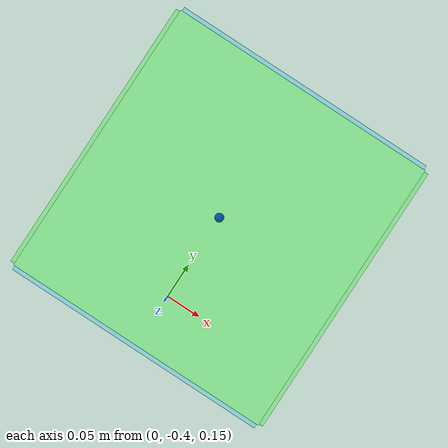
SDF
<?xml version="1.0"?>
<sdf version="1.8">
  <model name="drawing_surface">
    <!-- 3D Workspace Visualization Box -->
    <!-- X: ±12cm, Y: -40cm to -15cm, Z: 18cm to 42cm -->
    <!-- Center: X=0, Y=-27.5cm, Z=30cm -->
    <pose>0 0 0 0 0 0</pose>
    <static>true</static>

    <!-- Workspace bounds (green wireframe) -->

    <!-- Top border (Z = 42cm) -->
    <link name="top_border">
      <pose>0 -0.275 0.42 0 0 0</pose>
      <visual name="top_border_visual">
        <geometry>
          <box>
            <size>0.24 0.25 0.01</size>  <!-- 24cm x 25cm x 1cm -->
          </box>
        </geometry>
        <material>
          <ambient>0.0 1.0 0.0 0.3</ambient>
          <diffuse>0.0 1.0 0.0 0.3</diffuse>
        </material>
      </visual>
    </link>

    <!-- Bottom border (Z = 18cm) -->
    <link name="bottom_border">
      <pose>0 -0.275 0.18 0 0 0</pose>
      <visual name="bottom_border_visual">
        <geometry>
          <box>
            <size>0.24 0.25 0.01</size>
          </box>
        </geometry>
        <material>
          <ambient>0.0 1.0 0.0 0.3</ambient>
          <diffuse>0.0 1.0 0.0 0.3</diffuse>
        </material>
      </visual>
    </link>

    <!-- Left border (X = -12cm) -->
    <link name="left_border">
      <pose>-0.12 -0.275 0.30 0 0 0</pose>
      <visual name="left_border_visual">
        <geometry>
          <box>
            <size>0.01 0.25 0.24</size>  <!-- 1cm x 25cm x 24cm -->
          </box>
        </geometry>
        <material>
          <ambient>0.0 1.0 0.0 0.3</ambient>
          <diffuse>0.0 1.0 0.0 0.3</diffuse>
        </material>
      </visual>
    </link>

    <!-- Right border (X = +12cm) -->
    <link name="right_border">
      <pose>0.12 -0.275 0.30 0 0 0</pose>
      <visual name="right_border_visual">
        <geometry>
          <box>
            <size>0.01 0.25 0.24</size>
          </box>
        </geometry>
        <material>
          <ambient>0.0 1.0 0.0 0.3</ambient>
          <diffuse>0.0 1.0 0.0 0.3</diffuse>
        </material>
      </visual>
    </link>

    <!-- Front border (Y = -15cm, closer to robot) -->
    <link name="front_border">
      <pose>0 -0.15 0.30 0 0 0</pose>
      <visual name="front_border_visual">
        <geometry>
          <box>
            <size>0.24 0.01 0.24</size>
          </box>
        </geometry>
        <material>
          <ambient>0.0 0.8 1.0 0.3</ambient>  <!-- Cyan for front -->
          <diffuse>0.0 0.8 1.0 0.3</diffuse>
        </material>
      </visual>
    </link>

    <!-- Back border (Y = -40cm, further from robot) -->
    <link name="back_border">
      <pose>0 -0.40 0.30 0 0 0</pose>
      <visual name="back_border_visual">
        <geometry>
          <box>
            <size>0.24 0.01 0.24</size>
          </box>
        </geometry>
        <material>
          <ambient>0.0 0.8 1.0 0.3</ambient>  <!-- Cyan for back -->
          <diffuse>0.0 0.8 1.0 0.3</diffuse>
        </material>
      </visual>
    </link>

    <!-- Center marker for reference -->
    <link name="center_marker">
      <pose>0 -0.275 0.30 0 0 0</pose>
      <visual name="center_marker_visual">
        <geometry>
          <sphere>
            <radius>0.005</radius>
          </sphere>
        </geometry>
        <material>
          <ambient>0.0 0.0 1.0 1.0</ambient>  <!-- Blue -->
          <diffuse>0.0 0.0 1.0 1.0</diffuse>
        </material>
      </visual>
    </link>

  </model>
</sdf>
